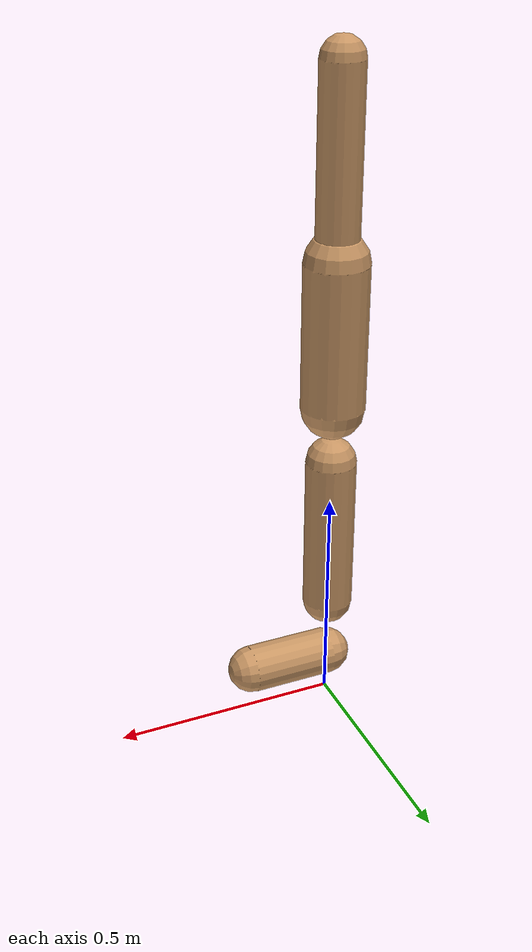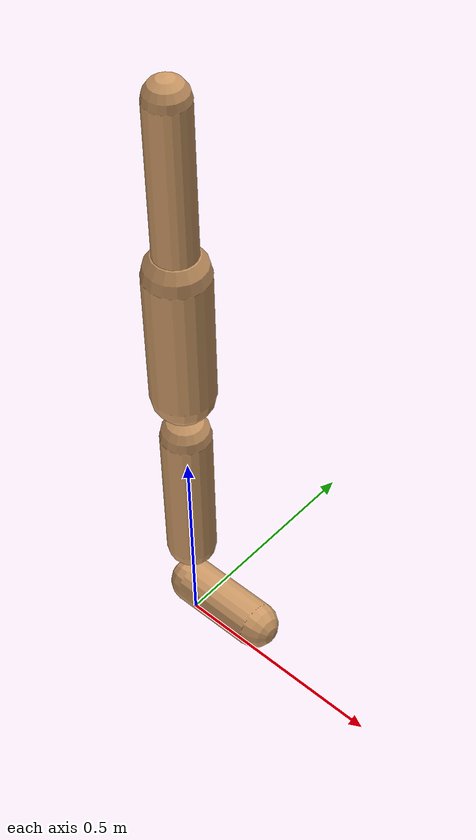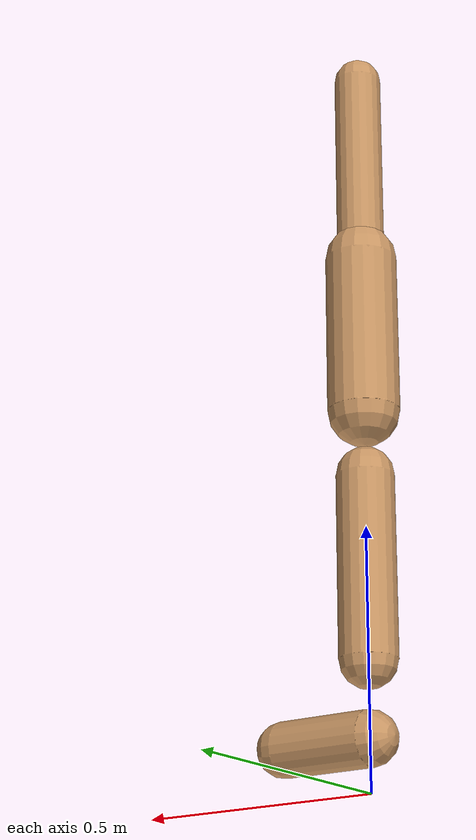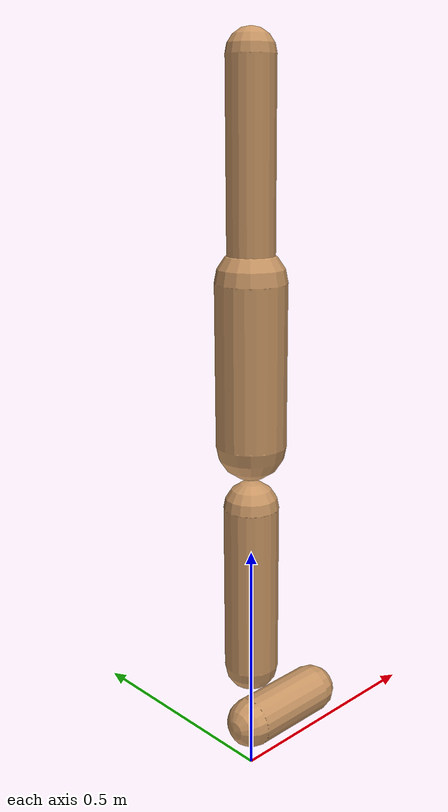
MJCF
<mujoco model="walker2d">
  <compiler angle="degree" coordinate="global" inertiafromgeom="true" />
  <default>
    <joint armature="0.01" damping=".1" limited="true" />
    <geom conaffinity="0" condim="3" contype="1" density="1000" friction="0.8 .1 .1" rgba="0.8 0.6 .4 1" />
  </default>
  <option integrator="RK4" timestep="0.002" />
  <worldbody>

    <body name="torso" pos="0 0 -0.2769911066448973">
      <joint armature="0" axis="1 0 0" damping="0" limited="false" name="ignorex" pos="0 0 0" stiffness="0" type="slide" />
      <joint armature="0" axis="0 0 1" damping="0" limited="false" name="ignorez" pos="0 0 0" ref="1.25" stiffness="0" type="slide" />
      <joint armature="0" axis="0 1 0" damping="0" limited="false" name="ignorey" pos="0 0 0" stiffness="0" type="hinge" />
      <geom fromto="0 0 1.45 0 0 1.05" name="torso_geom" size="0.04629125618620053" type="capsule" />
      <body name="thigh">
        <joint axis="0 -1 0" name="thigh_joint" pos="0 0 1.05" range="-150 0" type="hinge" />
        <geom fromto="0.0 0.0 1.05 0.0 0.0 0.7312063136738987" name="thigh_geom" size="0.06986049902360988" type="capsule" />
        <body name="leg" pos="0.0 0.0 0.13120631367389868">
          <joint axis="0 -1 0" name="leg_joint" pos="0 0 0.6" range="-150 0" type="hinge" />
          <geom fromto="0.0 0.0 0.6 0.0 0.0 0.24578479297099856" name="leg_geom" size="0.055888399218887906" type="capsule" />
          <body name="foot" pos="0.0 0.0 0.14578479297099856">
            <joint axis="0 -1 0" name="foot_joint" pos="0 0 0.1" range="-45 45" type="hinge" />
            <geom fromto="0.0 0.0 0.1 0.18748159966903255 0.0 0.1" name="foot_geom" size="0.05274752816113711" type="capsule" />
          </body>
        </body>
      </body>

      <body name="thigh_left">
        <joint axis="0 -1 0" name="thigh_left_joint" pos="0 0 1.05" range="-150 0" type="hinge" />
        <geom fromto="0.0 0.0 1.05 0.0 0.0 0.7312063136738987" name="thigh_left_geom" rgba=".7 .3 .6 1" size="0.06986049902360988" type="capsule" />
        <body name="leg_left" pos="0.0 0.0 0.13120631367389868">
          <joint axis="0 -1 0" name="leg_left_joint" pos="0 0 0.6" range="-150 0" type="hinge" />
          <geom fromto="0.0 0.0 0.6 0.0 0.0 0.24578479297099856" name="leg_left_geom" rgba=".7 .3 .6 1" size="0.055888399218887906" type="capsule" />
          <body name="foot_left" pos="0.0 0.0 0.14578479297099856">
            <joint axis="0 -1 0" name="foot_left_joint" pos="0 0 0.1" range="-45 45" type="hinge" />
            <geom fromto="0.0 0.0 0.1 0.18748159966903255 0.0 0.1" name="foot_left_geom" rgba=".7 .3 .6 1" size="0.05274752816113711" type="capsule" />
          </body>
        </body>
      </body>
    </body>
  </worldbody>
  <actuator>

    <motor ctrllimited="true" ctrlrange="-1.0 1.0" gear="100" joint="thigh_joint" />
    <motor ctrllimited="true" ctrlrange="-1.0 1.0" gear="100" joint="leg_joint" />
    <motor ctrllimited="true" ctrlrange="-1.0 1.0" gear="100" joint="foot_joint" />
    <motor ctrllimited="true" ctrlrange="-1.0 1.0" gear="100" joint="thigh_left_joint" />
    <motor ctrllimited="true" ctrlrange="-1.0 1.0" gear="100" joint="leg_left_joint" />
    <motor ctrllimited="true" ctrlrange="-1.0 1.0" gear="100" joint="foot_left_joint" />

  </actuator>
</mujoco>
